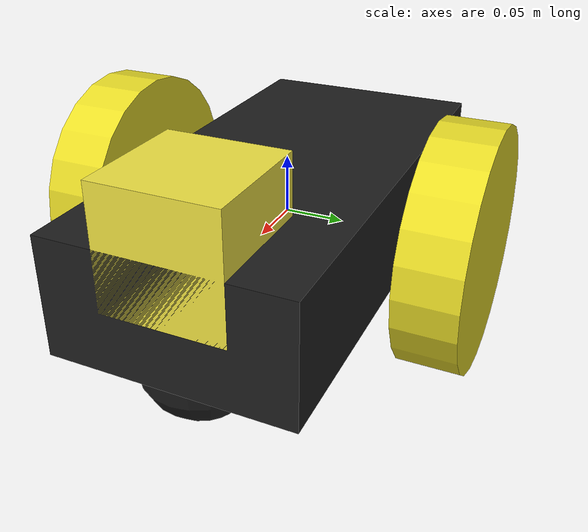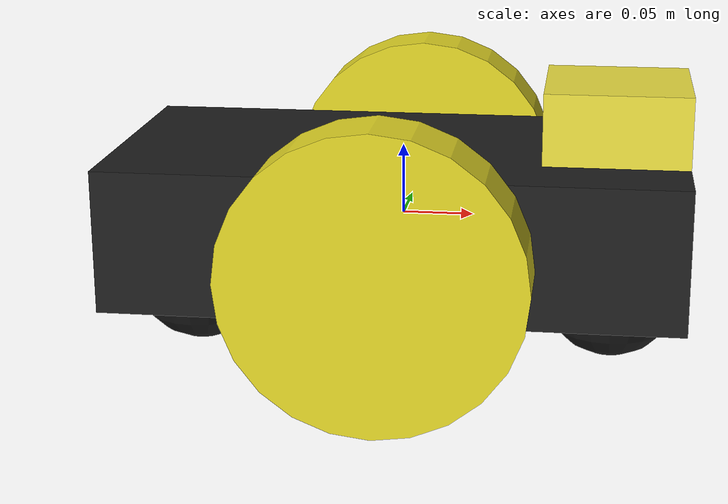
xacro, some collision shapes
<?xml version="1.0"?>

<robot name="kinect_robot" xmlns:xacro="http://www.ros.org/wiki/xacro">

  <xacro:include filename="$(find robot_description)/urdf/materials.xacro"/>
  <xacro:include filename="$(find robot_description)/urdf/gazebo.xacro"/>

  <link name='base_footprint'>
    <pose>0 0 0.1 0 0 0</pose>

    <inertial>
      <mass value="5.0"/>
      <origin xyz="0.0 0 0.1" rpy=" 0 0 0"/>
      <inertia
          ixx="0.1" ixy="0" ixz="0"
          iyy="0.1" iyz="0"
          izz="0.1"
      />
    </inertial>

    <collision name='collision'>
      <geometry>
        <box size=".4 .2 .1"/>
      </geometry>
    </collision>

    <visual name='base_footprint_visual'>
      <origin xyz="0 0 0" rpy=" 0 0 0"/>
      <geometry>
        <box size=".4 .2 .1"/>
      </geometry>
      <material name="black"/>
    </visual>
    <collision name='caster_collision'>
      <origin xyz="-0.15 0 -0.05" rpy=" 0 0 0"/>
      <geometry>
        <sphere radius="0.05"/>
      </geometry>
    </collision>

    <visual name='caster_visual'>
      <origin xyz="-0.15 0 -0.05" rpy=" 0 0 0"/>
      <geometry>
        <sphere radius="0.05"/>
      </geometry>
    </visual>

    <collision name='caster_front_collision'>
      <origin xyz="0.15 0 -0.05" rpy=" 0 0 0"/>
      <geometry>
        <sphere radius="0.05"/>
      </geometry>
    </collision>

    <visual name='caster_front_visual'>
      <origin xyz="0.15 0 -0.05" rpy=" 0 0 0"/>
      <geometry>
        <sphere radius="0.05"/>
      </geometry>
    </visual>

  </link>

  <link name="left_wheel">
    <collision name="collision">
      <origin xyz="0 0 0" rpy="0 1.5707 1.5707"/>
      <geometry>
        <cylinder radius="0.1" length="0.05"/>
      </geometry>
    </collision>
    <visual name="left_wheel_visual">
      <origin xyz="0 0 0" rpy="0 1.5707 1.5707"/>
      <geometry>
        <cylinder radius="0.1" length="0.05"/>
      </geometry>
      <material name="yellow"/>
    </visual>
    <inertial>
      <origin xyz="0 0 0" rpy="0 1.5707 1.5707"/>
      <mass value="5"/>
      <inertia
        ixx=".1" ixy="0.0" ixz="0.0"
        iyy=".1" iyz="0.0"
        izz=".1"/>
    </inertial>
  </link>

  <link name="right_wheel">
    <collision name="collision">
      <origin xyz="0 0 0" rpy="0 1.5707 1.5707"/>
      <geometry>
        <cylinder radius="0.1" length="0.05"/>
      </geometry>
    </collision>
    <visual name="right_wheel_visual">
      <origin xyz="0 0 0" rpy="0 1.5707 1.5707"/>
      <geometry>
        <cylinder radius="0.1" length="0.05"/>
      </geometry>
      <material name="yellow"/>
    </visual>
    <inertial>
      <origin xyz="0 0 0" rpy="0 1.5707 1.5707"/>
      <mass value="5"/>
      <inertia
        ixx=".1" ixy="0.0" ixz="0.0"
        iyy=".1" iyz="0.0"
        izz=".1"/>
    </inertial>
  </link>

  <joint type="continuous" name="left_wheel_hinge">
    <origin xyz="0 0.15 0" rpy="0 0 0"/>
    <child link="left_wheel"/>
    <parent link="base_footprint"/>
    <axis xyz="0 1 0" rpy="0 0 0"/>
    <joint_properties damping="0.0" friction="0.0"/>
  </joint>

  <joint type="continuous" name="right_wheel_hinge">
    <origin xyz="0 -0.15 0" rpy="0 0 0"/>
    <child link="right_wheel"/>
    <parent link="base_footprint"/>
    <axis xyz="0 1 0" rpy="0 0 0"/>
    <joint_properties damping="0.0" friction="0.0"/>
  </joint>

  <joint name="kinect_joint" type="fixed">

      <origin xyz=".15 0 .05" rpy="0 0 0"/>

      <parent link="base_footprint"/>
      <child link="camera_link"/>

  </joint>

  <!--Kinect  Link /-->

  <link name="camera_link">

    <visual>

          <origin xyz="0 0 0.05" rpy="0 0 0"/>

          <geometry>

          <mesh filename="package://robot_description/meshes/kinect.dae"/>

          </geometry>

    </visual>

    <collision>
        <origin xyz="0 0 0" rpy="0 0 0"/>

        <geometry>
        <box size="0.1 0.1 0.1"/>
        </geometry>

    </collision>

    <inertial>
        <mass value="1e-5" />
        <origin xyz="0 0 0" rpy="0 0 0"/>
        <inertia ixx="1e-6" ixy="0" ixz="0" iyy="1e-6" iyz="0" izz="1e-6" />
    </inertial>

  </link>

  <!--  Kinect Optical Link and joints   /-->

  <joint name="kinect_optical_joint" type="fixed">

    <origin xyz="0 0 0" rpy="-1.5707 0 -1.5707"/> <!-- To invert the coordinates from image convention (Z is forward) to normal xyz /-->
    <parent link="camera_link"/>
    <child link="kinect_optical"/>
  </joint>

  <!--Virtual link to project the images to, and then flip it to us as its joint is flipped  /-->
  <link name="kinect_optical">
  </link>

</robot>
